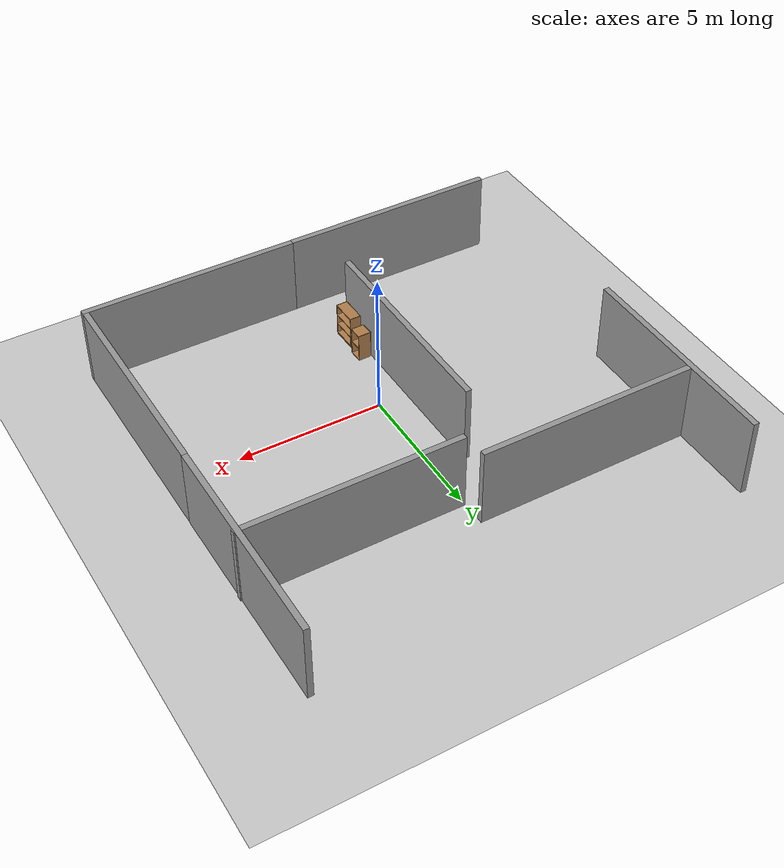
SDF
<sdf version="1.6">
 <world name="default">
  <light name="sun" type="directional">
   <pose>0 0 10 0 -0 0</pose>
   <diffuse>0.8 0.8 0.8 1</diffuse>
   <specular>0.1 0.1 0.1 1</specular>
   <attenuation>
    <range>1000</range>
    <constant>0.9</constant>
    <linear>0.01</linear>
    <quadratic>0.001</quadratic>
   </attenuation>
   <direction>-0.5 0.5 -1</direction>
  </light>
  <model name="ground_plane">
   <static>1</static>
   <link name="link">
    <collision name="collision">
     <geometry><plane><normal>0 0 1</normal><size>100 100</size></plane></geometry>
     <surface><friction><ode><mu>100</mu><mu2>50</mu2></ode></friction></surface>
    </collision>
    <visual name="visual">
     <cast_shadows>0</cast_shadows>
     <geometry><plane><normal>0 0 1</normal><size>100 100</size></plane></geometry>
     <material>
      <script><uri>file://media/materials/scripts/gazebo.material</uri><name>Gazebo/Grey</name></script>
     </material>
    </visual>
   </link>
  </model>
  <gravity>0 0 -9.8</gravity>
  <magnetic_field>6e-06 2.3e-05 -4.2e-05</magnetic_field>
  <atmosphere type="adiabatic"/>
  <physics name="default_physics" default="0" type="ode">
   <max_step_size>0.001</max_step_size>
   <real_time_factor>1</real_time_factor>
   <real_time_update_rate>1000</real_time_update_rate>
  </physics>
  <scene><ambient>0.4 0.4 0.4 1</ambient><background>0.7 0.7 0.7 1</background><shadows>1</shadows></scene>
  <spherical_coordinates>
   <surface_model>EARTH_WGS84</surface_model>
   <latitude_deg>0</latitude_deg>
   <longitude_deg>0</longitude_deg>
   <elevation>0</elevation>
   <heading_deg>0</heading_deg>
  </spherical_coordinates>
  <model name="grey_wall">
   <static>1</static>
   <link name="link">
    <pose>0 0 1.4 0 -0 0</pose>
    <collision name="collision"><geometry><box><size>7.5 0.2 2.8</size></box></geometry></collision>
    <visual name="visual">
     <cast_shadows>0</cast_shadows>
     <geometry><box><size>7.5 0.2 2.8</size></box></geometry>
     <material>
      <script>
       <uri>model://grey_wall/materials/scripts</uri>
       <uri>model://grey_wall/materials/textures</uri>
       <name>vrc/grey_wall</name>
      </script>
     </material>
    </visual>
   </link>
   <pose>3.73505 -5.89326 0 0 -0 0</pose>
  </model>
  <model name="grey_wall_0">
   <static>1</static>
   <link name="link">
    <pose>0 0 1.4 0 -0 0</pose>
    <collision name="collision"><geometry><box><size>7.5 0.2 2.8</size></box></geometry></collision>
    <visual name="visual">
     <cast_shadows>0</cast_shadows>
     <geometry><box><size>7.5 0.2 2.8</size></box></geometry>
     <material>
      <script>
       <uri>model://grey_wall/materials/scripts</uri>
       <uri>model://grey_wall/materials/textures</uri>
       <name>vrc/grey_wall</name>
      </script>
     </material>
    </visual>
   </link>
   <pose>-3.76138 -5.89645 0 0 -0 0</pose>
  </model>
  <model name="grey_wall_1">
   <static>1</static>
   <link name="link">
    <pose>0 0 1.4 0 -0 0</pose>
    <collision name="collision"><geometry><box><size>7.5 0.2 2.8</size></box></geometry></collision>
    <visual name="visual">
     <cast_shadows>0</cast_shadows>
     <geometry><box><size>7.5 0.2 2.8</size></box></geometry>
     <material>
      <script>
       <uri>model://grey_wall/materials/scripts</uri>
       <uri>model://grey_wall/materials/textures</uri>
       <name>vrc/grey_wall</name>
      </script>
     </material>
    </visual>
   </link>
   <pose>3.74351 5.10693 0 0 -0 0</pose>
  </model>
  <model name="grey_wall_2">
   <static>1</static>
   <link name="link">
    <pose>0 0 1.4 0 -0 0</pose>
    <collision name="collision"><geometry><box><size>7.5 0.2 2.8</size></box></geometry></collision>
    <visual name="visual">
     <cast_shadows>0</cast_shadows>
     <geometry><box><size>7.5 0.2 2.8</size></box></geometry>
     <material>
      <script>
       <uri>model://grey_wall/materials/scripts</uri>
       <uri>model://grey_wall/materials/textures</uri>
       <name>vrc/grey_wall</name>
      </script>
     </material>
    </visual>
   </link>
   <pose>-3.78862 5.97315 0 0 -0 0</pose>
  </model>
  <model name="grey_wall_3">
   <static>1</static>
   <link name="link">
    <pose>0 0 1.4 0 -0 0</pose>
    <collision name="collision"><geometry><box><size>7.5 0.2 2.8</size></box></geometry></collision>
    <visual name="visual">
     <cast_shadows>0</cast_shadows>
     <geometry><box><size>7.5 0.2 2.8</size></box></geometry>
     <material>
      <script>
       <uri>model://grey_wall/materials/scripts</uri>
       <uri>model://grey_wall/materials/textures</uri>
       <name>vrc/grey_wall</name>
      </script>
     </material>
    </visual>
   </link>
   <pose>-7.62009 5.26542 0 0 0 -1.57189</pose>
  </model>
  <model name="grey_wall_3_clone_clone">
   <static>1</static>
   <link name="link">
    <pose>0 0 1.4 0 -0 0</pose>
    <collision name="collision"><geometry><box><size>7.5 0.2 2.8</size></box></geometry></collision>
    <visual name="visual">
     <cast_shadows>0</cast_shadows>
     <geometry><box><size>7.5 0.2 2.8</size></box></geometry>
     <material>
      <script>
       <uri>model://grey_wall/materials/scripts</uri>
       <uri>model://grey_wall/materials/textures</uri>
       <name>vrc/grey_wall</name>
      </script>
     </material>
    </visual>
   </link>
   <pose>-1.11898 -0.251734 0 0 0 -1.56712</pose>
  </model>
  <model name="grey_wall_3_clone_clone_0">
   <static>1</static>
   <link name="link">
    <pose>0 0 1.4 0 -0 0</pose>
    <collision name="collision"><geometry><box><size>7.5 0.2 2.8</size></box></geometry></collision>
    <visual name="visual">
     <cast_shadows>0</cast_shadows>
     <geometry><box><size>7.5 0.2 2.8</size></box></geometry>
     <material>
      <script>
       <uri>model://grey_wall/materials/scripts</uri>
       <uri>model://grey_wall/materials/textures</uri>
       <name>vrc/grey_wall</name>
      </script>
     </material>
    </visual>
   </link>
   <pose>7.3712 -2.06036 0 0 0 -1.56712</pose>
  </model>
  <model name="grey_wall_3_clone_clone_0_clone">
   <static>1</static>
   <link name="link">
    <pose>0 0 1.4 0 -0 0</pose>
    <collision name="collision"><geometry><box><size>7.5 0.2 2.8</size></box></geometry></collision>
    <visual name="visual">
     <cast_shadows>0</cast_shadows>
     <geometry><box><size>7.5 0.2 2.8</size></box></geometry>
     <material>
      <script>
       <uri>model://grey_wall/materials/scripts</uri>
       <uri>model://grey_wall/materials/textures</uri>
       <name>vrc/grey_wall</name>
      </script>
     </material>
    </visual>
   </link>
   <pose>7.35287 5.41893 0 0 0 -1.56712</pose>
  </model>
  <model name="bookshelf">
   <static>1</static>
   <link name="link">
    <inertial><mass>1</mass></inertial>
    <collision name="back">
     <pose>0 0.005 0.6 0 -0 0</pose>
     <geometry><box><size>0.9 0.01 1.2</size></box></geometry>
    </collision>
    <visual name="visual1">
     <pose>0 0.005 0.6 0 -0 0</pose>
     <geometry><box><size>0.9 0.01 1.2</size></box></geometry>
     <material>
      <script><uri>file://media/materials/scripts/gazebo.material</uri><name>Gazebo/Wood</name></script>
     </material>
    </visual>
    <collision name="left_side">
     <pose>0.45 -0.195 0.6 0 -0 0</pose>
     <geometry><box><size>0.02 0.4 1.2</size></box></geometry>
    </collision>
    <visual name="visual2">
     <pose>0.45 -0.195 0.6 0 -0 0</pose>
     <geometry><box><size>0.02 0.4 1.2</size></box></geometry>
     <material>
      <script><uri>file://media/materials/scripts/gazebo.material</uri><name>Gazebo/Wood</name></script>
     </material>
    </visual>
    <collision name="right_side">
     <pose>-0.45 -0.195 0.6 0 -0 0</pose>
     <geometry><box><size>0.02 0.4 1.2</size></box></geometry>
    </collision>
    <visual name="visual3">
     <pose>-0.45 -0.195 0.6 0 -0 0</pose>
     <geometry><box><size>0.02 0.4 1.2</size></box></geometry>
     <material>
      <script><uri>file://media/materials/scripts/gazebo.material</uri><name>Gazebo/Wood</name></script>
     </material>
    </visual>
    <collision name="bottom">
     <pose>0 -0.195 0.03 0 -0 0</pose>
     <geometry><box><size>0.88 0.4 0.06</size></box></geometry>
    </collision>
    <visual name="visual4">
     <pose>0 -0.195 0.03 0 -0 0</pose>
     <geometry><box><size>0.88 0.4 0.06</size></box></geometry>
     <material>
      <script><uri>file://media/materials/scripts/gazebo.material</uri><name>Gazebo/Wood</name></script>
     </material>
    </visual>
    <collision name="top">
     <pose>0 -0.195 1.19 0 -0 0</pose>
     <geometry><box><size>0.88 0.4 0.02</size></box></geometry>
    </collision>
    <visual name="visual5">
     <pose>0 -0.195 1.19 0 -0 0</pose>
     <geometry><box><size>0.88 0.4 0.02</size></box></geometry>
     <material>
      <script><uri>file://media/materials/scripts/gazebo.material</uri><name>Gazebo/Wood</name></script>
     </material>
    </visual>
    <collision name="low_shelf">
     <pose>0 -0.195 0.43 0 -0 0</pose>
     <geometry><box><size>0.88 0.4 0.02</size></box></geometry>
    </collision>
    <visual name="visual6">
     <pose>0 -0.195 0.43 0 -0 0</pose>
     <geometry><box><size>0.88 0.4 0.02</size></box></geometry>
     <material>
      <script><uri>file://media/materials/scripts/gazebo.material</uri><name>Gazebo/Wood</name></script>
     </material>
    </visual>
    <collision name="high_shelf">
     <pose>0 -0.195 0.8 0 -0 0</pose>
     <geometry><box><size>0.88 0.4 0.02</size></box></geometry>
    </collision>
    <visual name="visual7">
     <pose>0 -0.195 0.8 0 -0 0</pose>
     <geometry><box><size>0.88 0.4 0.02</size></box></geometry>
     <material>
      <script><uri>file://media/materials/scripts/gazebo.material</uri><name>Gazebo/Wood</name></script>
     </material>
    </visual>
   </link>
   <pose>-1.004 -3.47132 0 0 -0 1.58523</pose>
  </model>
  <model name="cabinet">
   <static>1</static>
   <link name="cabinet_bottom_plate">
    <inertial>
     <pose>0 0 -1 0 -0 0</pose>
     <inertia><ixx>2.05</ixx><ixy>0</ixy><ixz>0</ixz><iyy>2.05</iyy><iyz>0</iyz><izz>2.05</izz></inertia>
     <mass>25</mass>
    </inertial>
    <collision name="cabinet_bottom_plate_geom">
     <pose>0 0 0.01 0 -0 0</pose>
     <geometry><box><size>0.45 0.45 0.02</size></box></geometry>
    </collision>
    <visual name="cabinet_bottom_plate_geom_visual">
     <pose>0 0 0.01 0 -0 0</pose>
     <geometry><box><size>0.45 0.45 0.02</size></box></geometry>
     <material>
      <script><uri>file://media/materials/scripts/gazebo.material</uri><name>Gazebo/Wood</name></script>
     </material>
    </visual>
    <collision name="cabinet_bottom_plate_geom_cabinet_back_plate">
     <pose>0.235 0 0.51 0 -0 0</pose>
     <geometry><box><size>0.02 0.45 1.02</size></box></geometry>
    </collision>
    <visual name="cabinet_bottom_plate_geom_cabinet_back_plate_visual">
     <pose>0.235 0 0.51 0 -0 0</pose>
     <geometry><box><size>0.02 0.45 1.02</size></box></geometry>
     <material>
      <script><uri>file://media/materials/scripts/gazebo.material</uri><name>Gazebo/Wood</name></script>
     </material>
    </visual>
    <collision name="cabinet_bottom_plate_geom_cabinet_left_plate">
     <pose>0 0.235 0.51 0 -0 0</pose>
     <geometry><box><size>0.45 0.02 1.02</size></box></geometry>
    </collision>
    <visual name="cabinet_bottom_plate_geom_cabinet_left_plate_visual">
     <pose>0 0.235 0.51 0 -0 0</pose>
     <geometry><box><size>0.45 0.02 1.02</size></box></geometry>
     <material>
      <script><uri>file://media/materials/scripts/gazebo.material</uri><name>Gazebo/Wood</name></script>
     </material>
    </visual>
    <collision name="cabinet_bottom_plate_geom_cabinet_middle_plate">
     <pose>0 0 0.51 0 -0 0</pose>
     <geometry><box><size>0.45 0.45 0.02</size></box></geometry>
    </collision>
    <visual name="cabinet_bottom_plate_geom_cabinet_middle_plate_visual">
     <pose>0 0 0.51 0 -0 0</pose>
     <geometry><box><size>0.45 0.45 0.02</size></box></geometry>
     <material>
      <script><uri>file://media/materials/scripts/gazebo.material</uri><name>Gazebo/Wood</name></script>
     </material>
    </visual>
    <collision name="cabinet_bottom_plate_geom_cabinet_right_plate">
     <pose>0 -0.235 0.51 0 -0 0</pose>
     <geometry><box><size>0.45 0.02 1.02</size></box></geometry>
    </collision>
    <visual name="cabinet_bottom_plate_geom_cabinet_right_plate_visual">
     <pose>0 -0.235 0.51 0 -0 0</pose>
     <geometry><box><size>0.45 0.02 1.02</size></box></geometry>
     <material>
      <script><uri>file://media/materials/scripts/gazebo.material</uri><name>Gazebo/Wood</name></script>
     </material>
    </visual>
    <collision name="cabinet_bottom_plate_geom_cabinet_top_plate">
     <pose>0 0 1.01 0 -0 0</pose>
     <geometry><box><size>0.45 0.45 0.02</size></box></geometry>
    </collision>
    <visual name="cabinet_bottom_plate_geom_cabinet_top_plate_visual">
     <pose>0 0 1.01 0 -0 0</pose>
     <geometry><box><size>0.45 0.45 0.02</size></box></geometry>
     <material>
      <script><uri>file://media/materials/scripts/gazebo.material</uri><name>Gazebo/Wood</name></script>
     </material>
    </visual>
   </link>
   <pose>-0.747388 -2.52434 0 0 0 -3.11894</pose>
  </model>
 </world>
</sdf>
